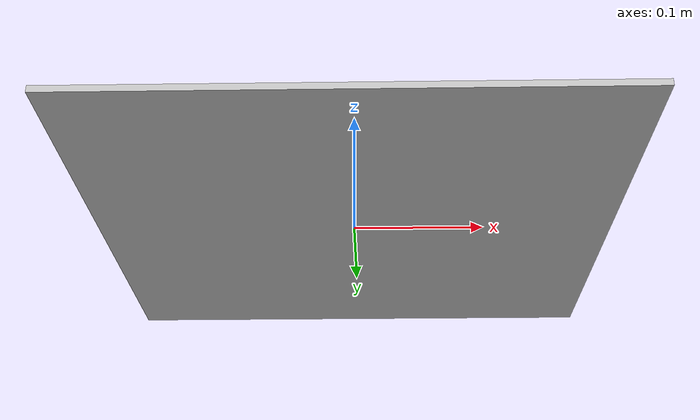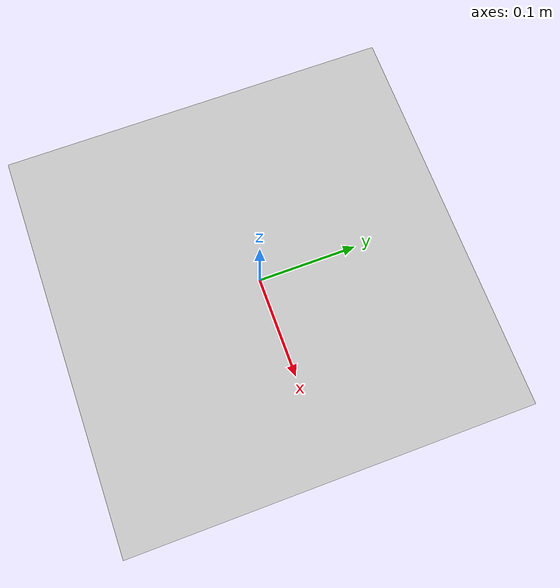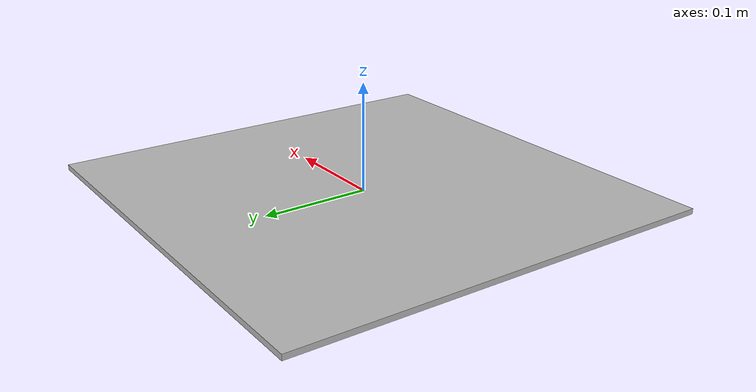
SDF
<?xml version="1.0" ?>
<sdf version="1.5">
  <model name="marker">
    <static>true</static>
    <pose>0 0 0.0025 0 0 0</pose>
    <link name="link">
      <inertial>
        <pose>-0.0 0.0 0.0 0 0 0</pose>
        <mass>0.1</mass>
        <inertia>
          <ixx>0.00058</ixx>
          <ixy>0</ixy>
          <ixz>0</ixz>
          <iyy>0.00058</iyy>
          <iyz>0</iyz>
          <izz>0.00019</izz>
        </inertia>
      </inertial>
      <collision name="collision">
        <geometry>
          <box>
            <size>.4 .4 .005</size>
          </box>
        </geometry>
        <surface>
          <friction>
            <ode>
              <mu>1.0</mu>
              <mu2>1.0</mu2>
            </ode>
          </friction>
          <contact>
            <ode>
              <kp>10000000.0</kp>
              <kd>1.0</kd>
              <min_depth>0.001</min_depth>
              <max_vel>0.1</max_vel>
            </ode>
          </contact>
        </surface>
      </collision>
      <visual name="visual">
        <geometry>
          <box>
              <size>.4 .4 .005</size>
          </box>
        </geometry>
        <material>
          <script>
            <uri>model://marker/materials/</uri>
            <uri>model://marker/textures</uri>
            <name>marker</name>
          </script>
        </material>
      </visual>
    </link>
  </model>
</sdf>
